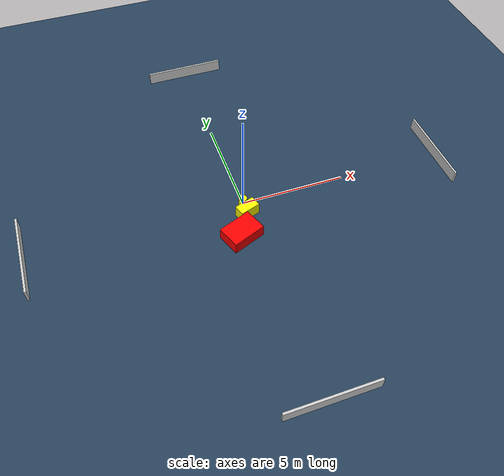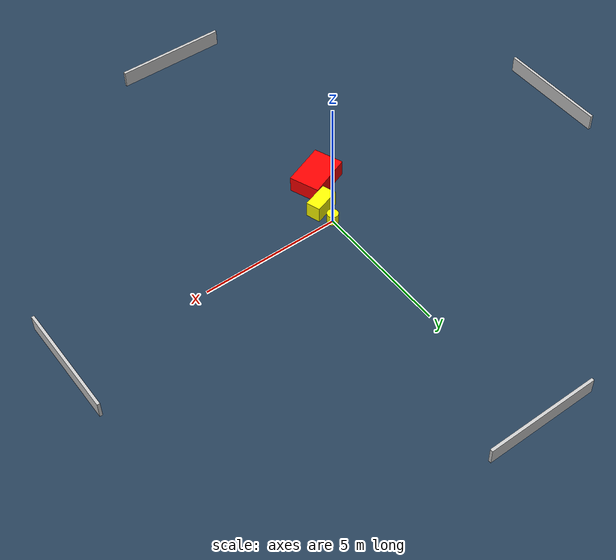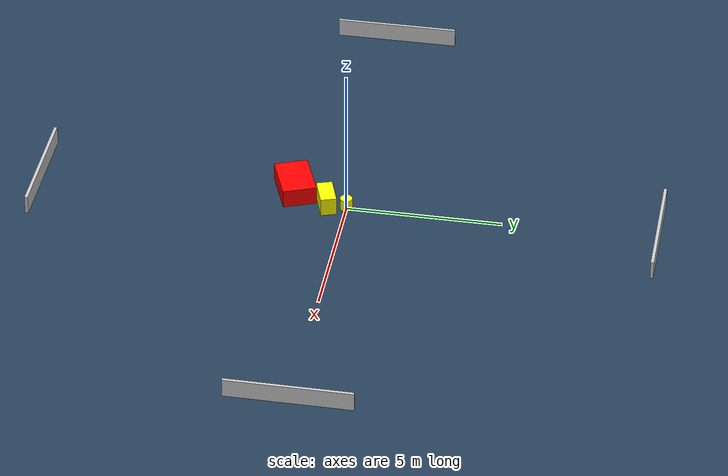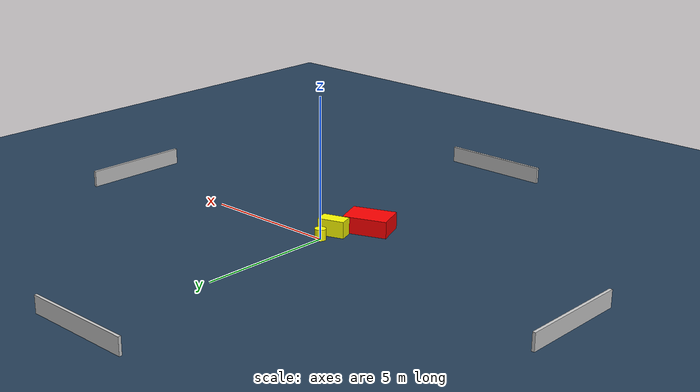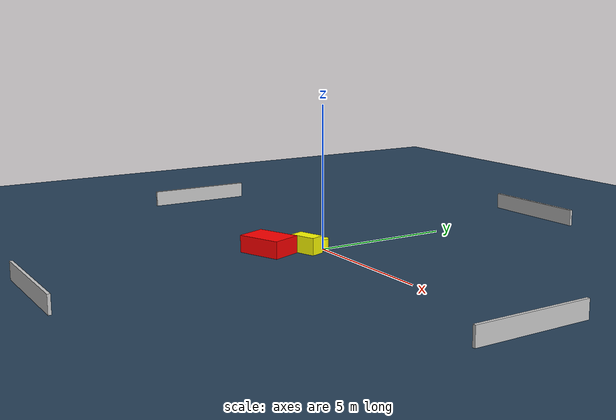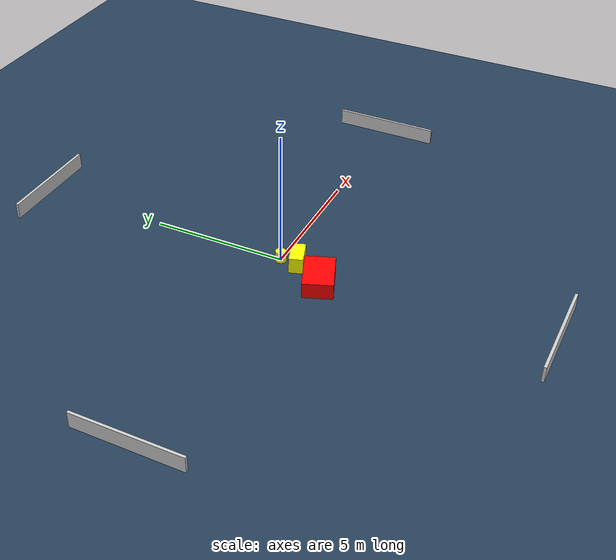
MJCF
<?xml version="1.0" ?>
<mujoco model="generated_environment">
  <option timestep="0.01" integrator="RK4" cone="elliptic"/>
  <default>
    <geom density="1"/>
  </default>
  <asset>
    <texture builtin="gradient" height="3072" name="skybox" rgb1="0.3 0.5 0.7" rgb2="0 0 0" type="skybox" width="512"/>
    <texture builtin="checker" height="300" name="groundplane" rgb1="0.2 0.3 0.4" rgb2="0.1 0.2 0.3" type="2d" width="300"/>
    <material name="groundplane" reflectance="0.2" texrepeat="5 5" texture="groundplane"/>
  </asset>
  <worldbody>
    <light dir="0 0 -1" directional="true" pos="0 0 1.5"/>
    <geom condim="3" friction="0.5 0.005 0.001" material="groundplane" name="floor" pos="0 0 0" size="0 0 0.05" type="plane"/>
    <body name="walls">
      <geom name="wall_1" condim="4" pos="-10.0 0.0 0.3" rgba="0.800000011920929 0.800000011920929 0.800000011920929 1.0" size="0.05 2.0 0.3" type="box"/>
      <geom name="wall_2" condim="4" pos="10.0 0.0 0.3" rgba="0.800000011920929 0.800000011920929 0.800000011920929 1.0" size="0.05 2.0 0.3" type="box"/>
      <geom name="wall_3" condim="4" pos="0.0 -10.0 0.3" rgba="0.800000011920929 0.800000011920929 0.800000011920929 1.0" size="2.0 0.05 0.3" type="box"/>
      <geom name="wall_4" condim="4" pos="0.0 10.0 0.3" rgba="0.800000011920929 0.800000011920929 0.800000011920929 1.0" size="2.0 0.05 0.3" type="box"/>
    </body>
    <body name="robot">
      <joint name="joint_x" type="slide" pos="0 0 0" axis="1 0 0"/>
      <joint name="joint_y" type="slide" pos="0 0 0" axis="0 1 0"/>
      <geom name="robot" type="cylinder" pos="0.0 0.0 0.2" size="0.2 0.2 0.0" mass="5.0" friction="1.0 0.005 0.0001" condim="4" rgba="1.0 1.0 0.0 1.0"/>
    </body>
    <body name="obstacle_1_movable">
      <geom name="obstacle_1_movable" condim="4" pos="-0.006006786017121526 -0.6466960879439685 0.3" euler="0 0 108.59663504590151" friction="0.0 0.005 0.001" rgba="1.0 1.0 0.0 1.0" size="0.2559570031446764 0.4783492490355368 0.3" type="box" mass="0.1"/>
      <joint type="free"/>
    </body>
    <body name="obstacle_2_static">
      <geom name="obstacle_2_static" condim="4" pos="-0.6555604665836441 -1.7770053181299739 0.3" euler="0 0 201.20148689464438" friction="0.0 0.005 0.001" rgba="1.0 0.0 0.0 1.0" size="0.7941977526521327 0.5473608622579322 0.3" type="box"/>
    </body>
  </worldbody>
  <actuator>
    <motor name="actuator_x" joint="joint_x" gear="1" ctrlrange="-1 1"/>
    <motor name="actuator_y" joint="joint_y" gear="1" ctrlrange="-1 1"/>
  </actuator>
</mujoco>
